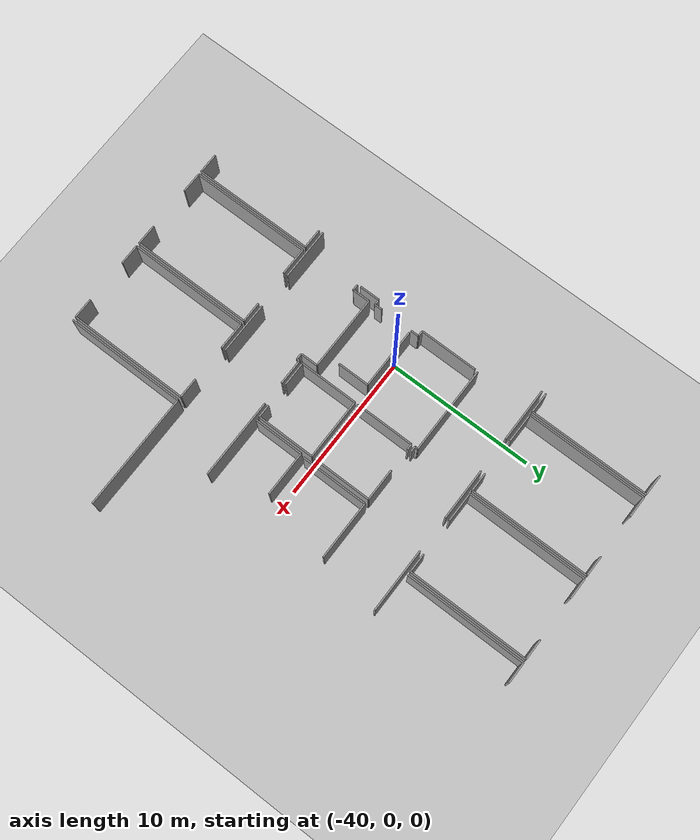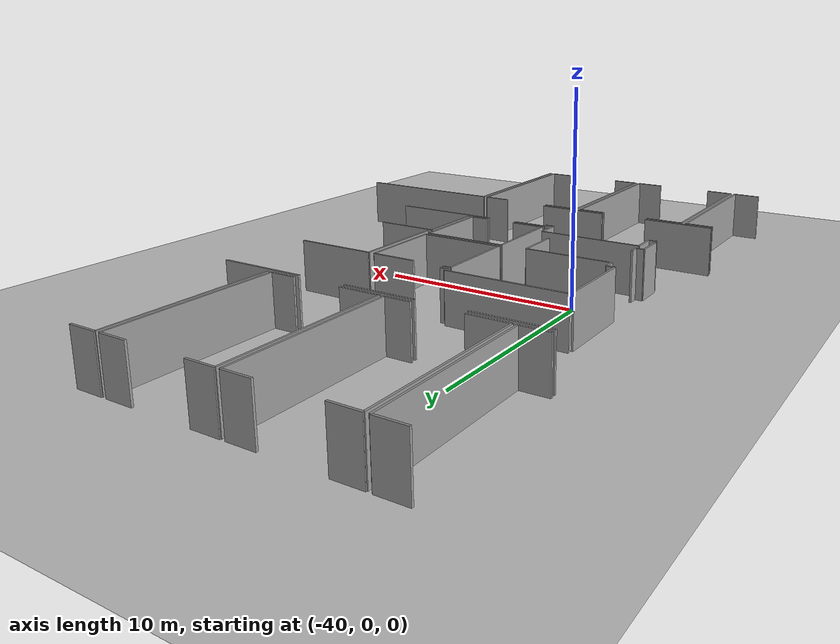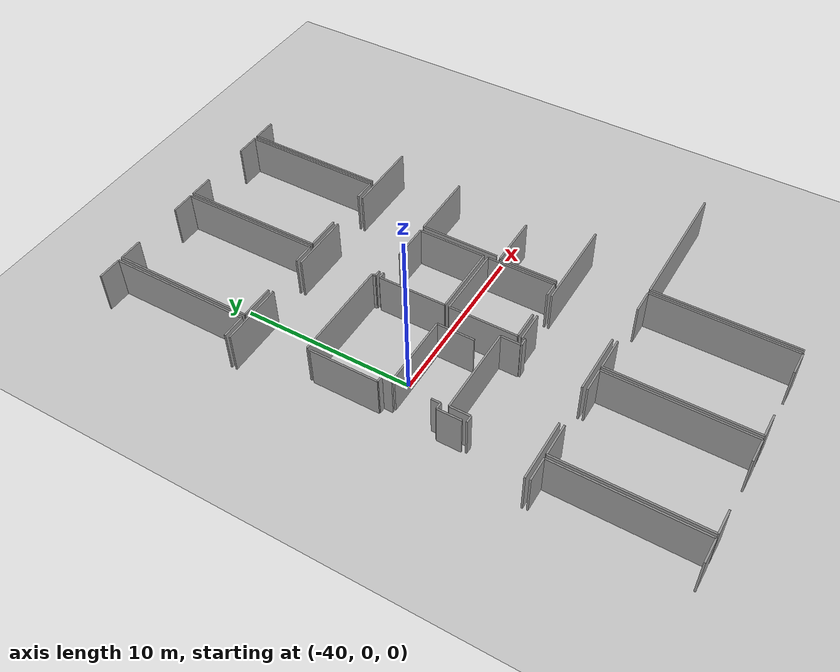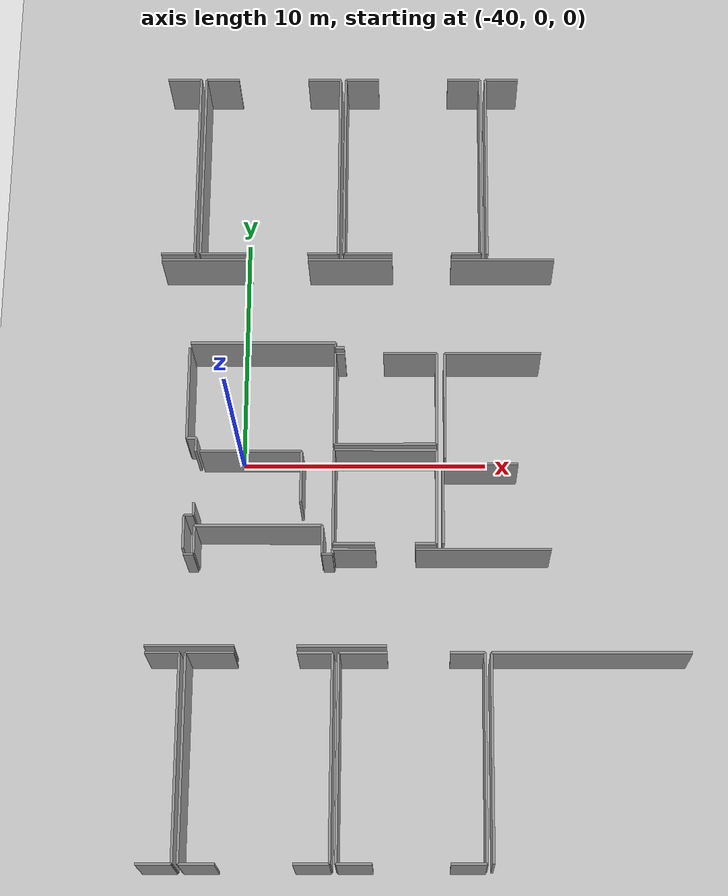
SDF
<sdf version="1.6">
 <world name="default">
  <model name="ground_plane">
   <static>1</static>
   <link name="link">
    <collision name="collision">
     <geometry><plane><normal>0 0 1</normal><size>100 100</size></plane></geometry>
     <surface><friction><ode><mu>100</mu><mu2>50</mu2></ode></friction></surface>
    </collision>
    <visual name="visual">
     <cast_shadows>0</cast_shadows>
     <geometry><plane><normal>0 0 1</normal><size>100 100</size></plane></geometry>
     <material>
      <script><uri>file://media/materials/scripts/gazebo.material</uri><name>Gazebo/Grey</name></script>
     </material>
    </visual>
   </link>
  </model>
  <model name="50041185">
   <static>1</static>
   <link name="Wall_22">
    <collision name="Wall_22_Collision">
     <geometry><box><size>1.37571651902 0.1 2.5</size></box></geometry>
     <pose>0.68785825951 0 1.25 0 0 0</pose>
    </collision>
    <visual name="Wall_22_Visual">
     <pose>0.68785825951 0 1.25 0 0 0</pose>
     <geometry><box><size>1.37571651902 0.1 2.5</size></box></geometry>
     <material>
      <script><uri>file://media/materials/scripts/gazebo.material</uri><name>Gazebo/Grey</name></script>
      <ambient>1 1 1 1</ambient>
     </material>
    </visual>
    <pose>28.1788406055 -25.3493308253 0 0 0 0.0</pose>
   </link>
   <link name="Wall_23">
    <collision name="Wall_23_Collision">
     <geometry><box><size>8.23040455522 0.1 2.5</size></box></geometry>
     <pose>4.11520227761 0 1.25 0 0 0</pose>
    </collision>
    <visual name="Wall_23_Visual">
     <pose>4.11520227761 0 1.25 0 0 0</pose>
     <geometry><box><size>8.23040455522 0.1 2.5</size></box></geometry>
     <material>
      <script><uri>file://media/materials/scripts/gazebo.material</uri><name>Gazebo/Grey</name></script>
      <ambient>1 1 1 1</ambient>
     </material>
    </visual>
    <pose>29.5545571245 -25.3493308253 0 0 0 -1.57079632679</pose>
   </link>
   <link name="Wall_24">
    <collision name="Wall_24_Collision">
     <geometry><box><size>1.38702830488 0.1 2.5</size></box></geometry>
     <pose>0.693514152442 0 1.25 0 0 0</pose>
    </collision>
    <visual name="Wall_24_Visual">
     <pose>0.693514152442 0 1.25 0 0 0</pose>
     <geometry><box><size>1.38702830488 0.1 2.5</size></box></geometry>
     <material>
      <script><uri>file://media/materials/scripts/gazebo.material</uri><name>Gazebo/Grey</name></script>
      <ambient>1 1 1 1</ambient>
     </material>
    </visual>
    <pose>29.5545571245 -33.5797353805 0 0 0 3.14159265359</pose>
   </link>
   <link name="Wall_26">
    <collision name="Wall_26_Collision">
     <geometry><box><size>8.23307362829 0.1 2.5</size></box></geometry>
     <pose>4.11653681414 0 1.25 0 0 0</pose>
    </collision>
    <visual name="Wall_26_Visual">
     <pose>4.11653681414 0 1.25 0 0 0</pose>
     <geometry><box><size>8.23307362829 0.1 2.5</size></box></geometry>
     <material>
      <script><uri>file://media/materials/scripts/gazebo.material</uri><name>Gazebo/Grey</name></script>
      <ambient>1 1 1 1</ambient>
     </material>
    </visual>
    <pose>29.7912149366 -33.5806250715 0 0 0 1.57079632679</pose>
   </link>
   <link name="Wall_27">
    <collision name="Wall_27_Collision">
     <geometry><box><size>1.90050712388 0.1 2.5</size></box></geometry>
     <pose>0.950253561942 0 1.25 0 0 0</pose>
    </collision>
    <visual name="Wall_27_Visual">
     <pose>0.950253561942 0 1.25 0 0 0</pose>
     <geometry><box><size>1.90050712388 0.1 2.5</size></box></geometry>
     <material>
      <script><uri>file://media/materials/scripts/gazebo.material</uri><name>Gazebo/Grey</name></script>
      <ambient>1 1 1 1</ambient>
     </material>
    </visual>
    <pose>29.7912149366 -25.3475514432 0 0 0 0.0</pose>
   </link>
   <link name="Wall_28">
    <collision name="Wall_28_Collision">
     <geometry><box><size>1.38664700873 0.1 2.5</size></box></geometry>
     <pose>0.693323504366 0 1.25 0 0 0</pose>
    </collision>
    <visual name="Wall_28_Visual">
     <pose>0.693323504366 0 1.25 0 0 0</pose>
     <geometry><box><size>1.38664700873 0.1 2.5</size></box></geometry>
     <material>
      <script><uri>file://media/materials/scripts/gazebo.material</uri><name>Gazebo/Grey</name></script>
      <ambient>1 1 1 1</ambient>
     </material>
    </visual>
    <pose>34.1704012507 -25.3475514432 0 0 0 0.0</pose>
   </link>
   <link name="Wall_29">
    <collision name="Wall_29_Collision">
     <geometry><box><size>8.24082665006 0.1 2.5</size></box></geometry>
     <pose>4.12041332503 0 1.25 0 0 0</pose>
    </collision>
    <visual name="Wall_29_Visual">
     <pose>4.12041332503 0 1.25 0 0 0</pose>
     <geometry><box><size>8.24082665006 0.1 2.5</size></box></geometry>
     <material>
      <script><uri>file://media/materials/scripts/gazebo.material</uri><name>Gazebo/Grey</name></script>
      <ambient>1 1 1 1</ambient>
     </material>
    </visual>
    <pose>35.5570482594 -25.3475514432 0 0 0 -1.57079632679</pose>
   </link>
   <link name="Wall_30">
    <collision name="Wall_30_Collision">
     <geometry><box><size>1.3957981164 0.1 2.5</size></box></geometry>
     <pose>0.697899058199 0 1.25 0 0 0</pose>
    </collision>
    <visual name="Wall_30_Visual">
     <pose>0.697899058199 0 1.25 0 0 0</pose>
     <geometry><box><size>1.3957981164 0.1 2.5</size></box></geometry>
     <material>
      <script><uri>file://media/materials/scripts/gazebo.material</uri><name>Gazebo/Grey</name></script>
      <ambient>1 1 1 1</ambient>
     </material>
    </visual>
    <pose>35.5570482594 -33.5883780933 0 0 0 3.14159265359</pose>
   </link>
   <link name="Wall_31">
    <collision name="Wall_31_Collision">
     <geometry><box><size>1.40268287387 0.1 2.5</size></box></geometry>
     <pose>0.701341436936 0 1.25 0 0 0</pose>
    </collision>
    <visual name="Wall_31_Visual">
     <pose>0.701341436936 0 1.25 0 0 0</pose>
     <geometry><box><size>1.40268287387 0.1 2.5</size></box></geometry>
     <material>
      <script><uri>file://media/materials/scripts/gazebo.material</uri><name>Gazebo/Grey</name></script>
      <ambient>1 1 1 1</ambient>
     </material>
    </visual>
    <pose>31.1938763838 -33.5883780933 0 0 0 3.13606534489</pose>
   </link>
   <link name="Wall_32">
    <collision name="Wall_32_Collision">
     <geometry><box><size>8.23980986032 0.1 2.5</size></box></geometry>
     <pose>4.11990493016 0 1.25 0 0 0</pose>
    </collision>
    <visual name="Wall_32_Visual">
     <pose>4.11990493016 0 1.25 0 0 0</pose>
     <geometry><box><size>8.23980986032 0.1 2.5</size></box></geometry>
     <material>
      <script><uri>file://media/materials/scripts/gazebo.material</uri><name>Gazebo/Grey</name></script>
      <ambient>1 1 1 1</ambient>
     </material>
    </visual>
    <pose>35.8050178574 -33.5869800074 0 0 0 1.57079632679</pose>
   </link>
   <link name="Wall_33">
    <collision name="Wall_33_Collision">
     <geometry><box><size>1.90775175078 0.1 2.5</size></box></geometry>
     <pose>0.953875875392 0 1.25 0 0 0</pose>
    </collision>
    <visual name="Wall_33_Visual">
     <pose>0.953875875392 0 1.25 0 0 0</pose>
     <geometry><box><size>1.90775175078 0.1 2.5</size></box></geometry>
     <material>
      <script><uri>file://media/materials/scripts/gazebo.material</uri><name>Gazebo/Grey</name></script>
      <ambient>1 1 1 1</ambient>
     </material>
    </visual>
    <pose>35.8050178574 -25.3471701471 0 0 0 0.0</pose>
   </link>
   <link name="Wall_34">
    <collision name="Wall_34_Collision">
     <geometry><box><size>1.36745510238 0.1 2.5</size></box></geometry>
     <pose>0.683727551189 0 1.25 0 0 0</pose>
    </collision>
    <visual name="Wall_34_Visual">
     <pose>0.683727551189 0 1.25 0 0 0</pose>
     <geometry><box><size>1.36745510238 0.1 2.5</size></box></geometry>
     <material>
      <script><uri>file://media/materials/scripts/gazebo.material</uri><name>Gazebo/Grey</name></script>
      <ambient>1 1 1 1</ambient>
     </material>
    </visual>
    <pose>40.1909404034 -25.3471701471 0 0 0 0.0</pose>
   </link>
   <link name="Wall_35">
    <collision name="Wall_35_Collision">
     <geometry><box><size>8.23002325907 0.1 2.5</size></box></geometry>
     <pose>4.11501162953 0 1.25 0 0 0</pose>
    </collision>
    <visual name="Wall_35_Visual">
     <pose>4.11501162953 0 1.25 0 0 0</pose>
     <geometry><box><size>8.23002325907 0.1 2.5</size></box></geometry>
     <material>
      <script><uri>file://media/materials/scripts/gazebo.material</uri><name>Gazebo/Grey</name></script>
      <ambient>1 1 1 1</ambient>
     </material>
    </visual>
    <pose>41.5583955058 -25.3471701471 0 0 0 -1.57079632679</pose>
   </link>
   <link name="Wall_36">
    <collision name="Wall_36_Collision">
     <geometry><box><size>1.38690120617 0.1 2.5</size></box></geometry>
     <pose>0.693450603083 0 1.25 0 0 0</pose>
    </collision>
    <visual name="Wall_36_Visual">
     <pose>0.693450603083 0 1.25 0 0 0</pose>
     <geometry><box><size>1.38690120617 0.1 2.5</size></box></geometry>
     <material>
      <script><uri>file://media/materials/scripts/gazebo.material</uri><name>Gazebo/Grey</name></script>
      <ambient>1 1 1 1</ambient>
     </material>
    </visual>
    <pose>41.5583955058 -33.5771934061 0 0 0 3.14159265359</pose>
   </link>
   <link name="Wall_37">
    <collision name="Wall_37_Collision">
     <geometry><box><size>1.37905581189 0.1 2.5</size></box></geometry>
     <pose>0.689527905945 0 1.25 0 0 0</pose>
    </collision>
    <visual name="Wall_37_Visual">
     <pose>0.689527905945 0 1.25 0 0 0</pose>
     <geometry><box><size>1.37905581189 0.1 2.5</size></box></geometry>
     <material>
      <script><uri>file://media/materials/scripts/gazebo.material</uri><name>Gazebo/Grey</name></script>
      <ambient>1 1 1 1</ambient>
     </material>
    </visual>
    <pose>37.184038943 -33.5771934061 0 0 0 -3.13449599853</pose>
   </link>
   <link name="Wall_38">
    <collision name="Wall_38_Collision">
     <geometry><box><size>8.23510720777 0.1 2.5</size></box></geometry>
     <pose>4.11755360388 0 1.25 0 0 0</pose>
    </collision>
    <visual name="Wall_38_Visual">
     <pose>4.11755360388 0 1.25 0 0 0</pose>
     <geometry><box><size>8.23510720777 0.1 2.5</size></box></geometry>
     <material>
      <script><uri>file://media/materials/scripts/gazebo.material</uri><name>Gazebo/Grey</name></script>
      <ambient>1 1 1 1</ambient>
     </material>
    </visual>
    <pose>41.8078902884 -33.582658651 0 0 0 1.57079632679</pose>
   </link>
   <link name="Wall_39">
    <collision name="Wall_39_Collision">
     <geometry><box><size>7.88698382033 0.1 2.5</size></box></geometry>
     <pose>3.94349191017 0 1.25 0 0 0</pose>
    </collision>
    <visual name="Wall_39_Visual">
     <pose>3.94349191017 0 1.25 0 0 0</pose>
     <geometry><box><size>7.88698382033 0.1 2.5</size></box></geometry>
     <material>
      <script><uri>file://media/materials/scripts/gazebo.material</uri><name>Gazebo/Grey</name></script>
      <ambient>1 1 1 1</ambient>
     </material>
    </visual>
    <pose>41.8078902884 -25.3475514432 0 0 0 0.0</pose>
   </link>
   <link name="Wall_131">
    <collision name="Wall_131_Collision">
     <geometry><box><size>3.95060943835 0.1 2.5</size></box></geometry>
     <pose>1.97530471918 0 1.25 0 0 0</pose>
    </collision>
    <visual name="Wall_131_Visual">
     <pose>1.97530471918 0 1.25 0 0 0</pose>
     <geometry><box><size>3.95060943835 0.1 2.5</size></box></geometry>
     <material>
      <script><uri>file://media/materials/scripts/gazebo.material</uri><name>Gazebo/Grey</name></script>
      <ambient>1 1 1 1</ambient>
     </material>
    </visual>
    <pose>29.5147752259 -12.4622834556 0 0 0 -1.57079632679</pose>
   </link>
   <link name="Wall_132">
    <collision name="Wall_132_Collision">
     <geometry><box><size>0.389811766799 0.1 2.5</size></box></geometry>
     <pose>0.1949058834 0 1.25 0 0 0</pose>
    </collision>
    <visual name="Wall_132_Visual">
     <pose>0.1949058834 0 1.25 0 0 0</pose>
     <geometry><box><size>0.389811766799 0.1 2.5</size></box></geometry>
     <material>
      <script><uri>file://media/materials/scripts/gazebo.material</uri><name>Gazebo/Grey</name></script>
      <ambient>1 1 1 1</ambient>
     </material>
    </visual>
    <pose>29.5147752259 -16.4128928939 0 0 0 0.0</pose>
   </link>
   <link name="Wall_133">
    <collision name="Wall_133_Collision">
     <geometry><box><size>0.566987379097 0.1 2.5</size></box></geometry>
     <pose>0.283493689549 0 1.25 0 0 0</pose>
    </collision>
    <visual name="Wall_133_Visual">
     <pose>0.283493689549 0 1.25 0 0 0</pose>
     <geometry><box><size>0.566987379097 0.1 2.5</size></box></geometry>
     <material>
      <script><uri>file://media/materials/scripts/gazebo.material</uri><name>Gazebo/Grey</name></script>
      <ambient>1 1 1 1</ambient>
     </material>
    </visual>
    <pose>29.9045869927 -16.4128928939 0 0 0 -1.57079632679</pose>
   </link>
   <link name="Wall_134">
    <collision name="Wall_134_Collision">
     <geometry><box><size>0.524663506145 0.1 2.5</size></box></geometry>
     <pose>0.262331753073 0 1.25 0 0 0</pose>
    </collision>
    <visual name="Wall_134_Visual">
     <pose>0.262331753073 0 1.25 0 0 0</pose>
     <geometry><box><size>0.524663506145 0.1 2.5</size></box></geometry>
     <material>
      <script><uri>file://media/materials/scripts/gazebo.material</uri><name>Gazebo/Grey</name></script>
      <ambient>1 1 1 1</ambient>
     </material>
    </visual>
    <pose>29.9045869927 -19.176908705 0 0 0 -1.57079632679</pose>
   </link>
   <link name="Wall_135">
    <collision name="Wall_135_Collision">
     <geometry><box><size>0.379643869393 0.1 2.5</size></box></geometry>
     <pose>0.189821934697 0 1.25 0 0 0</pose>
    </collision>
    <visual name="Wall_135_Visual">
     <pose>0.189821934697 0 1.25 0 0 0</pose>
     <geometry><box><size>0.379643869393 0.1 2.5</size></box></geometry>
     <material>
      <script><uri>file://media/materials/scripts/gazebo.material</uri><name>Gazebo/Grey</name></script>
      <ambient>1 1 1 1</ambient>
     </material>
    </visual>
    <pose>29.9045869927 -19.7015722111 0 0 0 3.14159265359</pose>
   </link>
   <link name="Wall_136">
    <collision name="Wall_136_Collision">
     <geometry><box><size>1.38804509462 0.1 2.5</size></box></geometry>
     <pose>0.694022547312 0 1.25 0 0 0</pose>
    </collision>
    <visual name="Wall_136_Visual">
     <pose>0.694022547312 0 1.25 0 0 0</pose>
     <geometry><box><size>1.38804509462 0.1 2.5</size></box></geometry>
     <material>
      <script><uri>file://media/materials/scripts/gazebo.material</uri><name>Gazebo/Grey</name></script>
      <ambient>1 1 1 1</ambient>
     </material>
    </visual>
    <pose>29.5249431233 -19.7015722111 0 0 0 -1.57079632679</pose>
   </link>
   <link name="Wall_137">
    <collision name="Wall_137_Collision">
     <geometry><box><size>4.13401288781 0.1 2.5</size></box></geometry>
     <pose>2.0670064439 0 1.25 0 0 0</pose>
    </collision>
    <visual name="Wall_137_Visual">
     <pose>2.0670064439 0 1.25 0 0 0</pose>
     <geometry><box><size>4.13401288781 0.1 2.5</size></box></geometry>
     <material>
      <script><uri>file://media/materials/scripts/gazebo.material</uri><name>Gazebo/Grey</name></script>
      <ambient>1 1 1 1</ambient>
     </material>
    </visual>
    <pose>30.0623165012 -16.9820409512 0 0 0 0.0</pose>
   </link>
   <link name="Wall_138">
    <collision name="Wall_138_Collision">
     <geometry><box><size>2.15675445179 0.1 2.5</size></box></geometry>
     <pose>1.07837722589 0 1.25 0 0 0</pose>
    </collision>
    <visual name="Wall_138_Visual">
     <pose>1.07837722589 0 1.25 0 0 0</pose>
     <geometry><box><size>2.15675445179 0.1 2.5</size></box></geometry>
     <material>
      <script><uri>file://media/materials/scripts/gazebo.material</uri><name>Gazebo/Grey</name></script>
      <ambient>1 1 1 1</ambient>
     </material>
    </visual>
    <pose>34.196329389 -16.9820409512 0 0 0 -1.57468575264</pose>
   </link>
   <link name="Wall_146">
    <collision name="Wall_146_Collision">
     <geometry><box><size>1.15748802095 0.1 2.5</size></box></geometry>
     <pose>0.578744010473 0 1.25 0 0 0</pose>
    </collision>
    <visual name="Wall_146_Visual">
     <pose>0.578744010473 0 1.25 0 0 0</pose>
     <geometry><box><size>1.15748802095 0.1 2.5</size></box></geometry>
     <material>
      <script><uri>file://media/materials/scripts/gazebo.material</uri><name>Gazebo/Grey</name></script>
      <ambient>1 1 1 1</ambient>
     </material>
    </visual>
    <pose>29.95936654 -21.2882726013 0 0 0 1.57079632679</pose>
   </link>
   <link name="Wall_147">
    <collision name="Wall_147_Collision">
     <geometry><box><size>5.12195121951 0.1 2.5</size></box></geometry>
     <pose>2.56097560976 0 1.25 0 0 0</pose>
    </collision>
    <visual name="Wall_147_Visual">
     <pose>2.56097560976 0 1.25 0 0 0</pose>
     <geometry><box><size>5.12195121951 0.1 2.5</size></box></geometry>
     <material>
      <script><uri>file://media/materials/scripts/gazebo.material</uri><name>Gazebo/Grey</name></script>
      <ambient>1 1 1 1</ambient>
     </material>
    </visual>
    <pose>29.95936654 -20.1307845804 0 0 0 0.0</pose>
   </link>
   <link name="Wall_148">
    <collision name="Wall_148_Collision">
     <geometry><box><size>1.14465105047 0.1 2.5</size></box></geometry>
     <pose>0.572325525235 0 1.25 0 0 0</pose>
    </collision>
    <visual name="Wall_148_Visual">
     <pose>0.572325525235 0 1.25 0 0 0</pose>
     <geometry><box><size>1.14465105047 0.1 2.5</size></box></geometry>
     <material>
      <script><uri>file://media/materials/scripts/gazebo.material</uri><name>Gazebo/Grey</name></script>
      <ambient>1 1 1 1</ambient>
     </material>
    </visual>
    <pose>35.0813177595 -20.1307845804 0 0 0 -1.57079632679</pose>
   </link>
   <link name="Wall_149">
    <collision name="Wall_149_Collision">
     <geometry><box><size>3.96484449472 0.1 2.5</size></box></geometry>
     <pose>1.98242224736 0 1.25 0 0 0</pose>
    </collision>
    <visual name="Wall_149_Visual">
     <pose>1.98242224736 0 1.25 0 0 0</pose>
     <geometry><box><size>3.96484449472 0.1 2.5</size></box></geometry>
     <material>
      <script><uri>file://media/materials/scripts/gazebo.material</uri><name>Gazebo/Grey</name></script>
      <ambient>1 1 1 1</ambient>
     </material>
    </visual>
    <pose>35.5110385236 -20.8891826281 0 0 0 1.57079632679</pose>
   </link>
   <link name="Wall_150">
    <collision name="Wall_150_Collision">
     <geometry><box><size>4.15841584158 0.1 2.5</size></box></geometry>
     <pose>2.07920792079 0 1.25 0 0 0</pose>
    </collision>
    <visual name="Wall_150_Visual">
     <pose>2.07920792079 0 1.25 0 0 0</pose>
     <geometry><box><size>4.15841584158 0.1 2.5</size></box></geometry>
     <material>
      <script><uri>file://media/materials/scripts/gazebo.material</uri><name>Gazebo/Grey</name></script>
      <ambient>1 1 1 1</ambient>
     </material>
    </visual>
    <pose>35.5110385236 -16.9243381334 0 0 0 0.0</pose>
   </link>
   <link name="Wall_151">
    <collision name="Wall_151_Collision">
     <geometry><box><size>3.95759986782 0.1 2.5</size></box></geometry>
     <pose>1.97879993391 0 1.25 0 0 0</pose>
    </collision>
    <visual name="Wall_151_Visual">
     <pose>1.97879993391 0 1.25 0 0 0</pose>
     <geometry><box><size>3.95759986782 0.1 2.5</size></box></geometry>
     <material>
      <script><uri>file://media/materials/scripts/gazebo.material</uri><name>Gazebo/Grey</name></script>
      <ambient>1 1 1 1</ambient>
     </material>
    </visual>
    <pose>39.6694543652 -16.9243381334 0 0 0 -1.57079632679</pose>
   </link>
   <link name="Wall_152">
    <collision name="Wall_152_Collision">
     <geometry><box><size>0.873676584603 0.1 2.5</size></box></geometry>
     <pose>0.436838292302 0 1.25 0 0 0</pose>
    </collision>
    <visual name="Wall_152_Visual">
     <pose>0.436838292302 0 1.25 0 0 0</pose>
     <geometry><box><size>0.873676584603 0.1 2.5</size></box></geometry>
     <material>
      <script><uri>file://media/materials/scripts/gazebo.material</uri><name>Gazebo/Grey</name></script>
      <ambient>1 1 1 1</ambient>
     </material>
    </visual>
    <pose>39.6694543652 -20.8819380012 0 0 0 3.14159265359</pose>
   </link>
   <link name="Wall_153">
    <collision name="Wall_153_Collision">
     <geometry><box><size>1.67657483593 0.1 2.5</size></box></geometry>
     <pose>0.838287417963 0 1.25 0 0 0</pose>
    </collision>
    <visual name="Wall_153_Visual">
     <pose>0.838287417963 0 1.25 0 0 0</pose>
     <geometry><box><size>1.67657483593 0.1 2.5</size></box></geometry>
     <material>
      <script><uri>file://media/materials/scripts/gazebo.material</uri><name>Gazebo/Grey</name></script>
      <ambient>1 1 1 1</ambient>
     </material>
    </visual>
    <pose>37.1875977071 -20.8819380012 0 0 0 -3.13727155244</pose>
   </link>
   <link name="Wall_154">
    <collision name="Wall_154_Collision">
     <geometry><box><size>3.36837021314 0.1 2.5</size></box></geometry>
     <pose>1.68418510657 0 1.25 0 0 0</pose>
    </collision>
    <visual name="Wall_154_Visual">
     <pose>1.68418510657 0 1.25 0 0 0</pose>
     <geometry><box><size>3.36837021314 0.1 2.5</size></box></geometry>
     <material>
      <script><uri>file://media/materials/scripts/gazebo.material</uri><name>Gazebo/Grey</name></script>
      <ambient>1 1 1 1</ambient>
     </material>
    </visual>
    <pose>39.9244143927 -20.8863864564 0 0 0 1.57079632679</pose>
   </link>
   <link name="Wall_155">
    <collision name="Wall_155_Collision">
     <geometry><box><size>3.04388718718 0.1 2.5</size></box></geometry>
     <pose>1.52194359359 0 1.25 0 0 0</pose>
    </collision>
    <visual name="Wall_155_Visual">
     <pose>1.52194359359 0 1.25 0 0 0</pose>
     <geometry><box><size>3.04388718718 0.1 2.5</size></box></geometry>
     <material>
      <script><uri>file://media/materials/scripts/gazebo.material</uri><name>Gazebo/Grey</name></script>
      <ambient>1 1 1 1</ambient>
     </material>
    </visual>
    <pose>39.9244143927 -17.5180162432 0 0 0 0.0</pose>
   </link>
   <link name="Wall_238">
    <collision name="Wall_238_Collision">
     <geometry><box><size>0.396675097548 0.1 2.5</size></box></geometry>
     <pose>0.198337548774 0 1.25 0 0 0</pose>
    </collision>
    <visual name="Wall_238_Visual">
     <pose>0.198337548774 0 1.25 0 0 0</pose>
     <geometry><box><size>0.396675097548 0.1 2.5</size></box></geometry>
     <material>
      <script><uri>file://media/materials/scripts/gazebo.material</uri><name>Gazebo/Grey</name></script>
      <ambient>1 1 1 1</ambient>
     </material>
    </visual>
    <pose>29.5555739143 -21.3242415384 0 0 0 0.0</pose>
   </link>
   <link name="Wall_239">
    <collision name="Wall_239_Collision">
     <geometry><box><size>0.42069675517 0.1 2.5</size></box></geometry>
     <pose>0.210348377585 0 1.25 0 0 0</pose>
    </collision>
    <visual name="Wall_239_Visual">
     <pose>0.210348377585 0 1.25 0 0 0</pose>
     <geometry><box><size>0.42069675517 0.1 2.5</size></box></geometry>
     <material>
      <script><uri>file://media/materials/scripts/gazebo.material</uri><name>Gazebo/Grey</name></script>
      <ambient>1 1 1 1</ambient>
     </material>
    </visual>
    <pose>35.0819532531 -21.3242415384 0 0 0 0.0</pose>
   </link>
   <link name="Wall_240">
    <collision name="Wall_240_Collision">
     <geometry><box><size>0.201832763507 0.1 2.5</size></box></geometry>
     <pose>0.100916381754 0 1.25 0 0 0</pose>
    </collision>
    <visual name="Wall_240_Visual">
     <pose>0.100916381754 0 1.25 0 0 0</pose>
     <geometry><box><size>0.201832763507 0.1 2.5</size></box></geometry>
     <material>
      <script><uri>file://media/materials/scripts/gazebo.material</uri><name>Gazebo/Grey</name></script>
      <ambient>1 1 1 1</ambient>
     </material>
    </visual>
    <pose>35.5026500083 -21.3242415384 0 0 0 1.57079632679</pose>
   </link>
   <link name="Wall_241">
    <collision name="Wall_241_Collision">
     <geometry><box><size>1.71989984621 0.1 2.5</size></box></geometry>
     <pose>0.859949923105 0 1.25 0 0 0</pose>
    </collision>
    <visual name="Wall_241_Visual">
     <pose>0.859949923105 0 1.25 0 0 0</pose>
     <geometry><box><size>1.71989984621 0.1 2.5</size></box></geometry>
     <material>
      <script><uri>file://media/materials/scripts/gazebo.material</uri><name>Gazebo/Grey</name></script>
      <ambient>1 1 1 1</ambient>
     </material>
    </visual>
    <pose>35.5026500083 -21.1224087749 0 0 0 0.0</pose>
   </link>
   <link name="Wall_242">
    <collision name="Wall_242_Collision">
     <geometry><box><size>5.42279388401 0.1 2.5</size></box></geometry>
     <pose>2.711396942 0 1.25 0 0 0</pose>
    </collision>
    <visual name="Wall_242_Visual">
     <pose>2.711396942 0 1.25 0 0 0</pose>
     <geometry><box><size>5.42279388401 0.1 2.5</size></box></geometry>
     <material>
      <script><uri>file://media/materials/scripts/gazebo.material</uri><name>Gazebo/Grey</name></script>
      <ambient>1 1 1 1</ambient>
     </material>
    </visual>
    <pose>38.8166219703 -21.1224087749 0 0 0 0.0</pose>
   </link>
   <link name="Wall_248">
    <collision name="Wall_248_Collision">
     <geometry><box><size>3.53741150752 0.1 2.5</size></box></geometry>
     <pose>1.76870575376 0 1.25 0 0 0</pose>
    </collision>
    <visual name="Wall_248_Visual">
     <pose>1.76870575376 0 1.25 0 0 0</pose>
     <geometry><box><size>3.53741150752 0.1 2.5</size></box></geometry>
     <material>
      <script><uri>file://media/materials/scripts/gazebo.material</uri><name>Gazebo/Grey</name></script>
      <ambient>1 1 1 1</ambient>
     </material>
    </visual>
    <pose>37.691671221 -25.0772124709 0 0 0 3.14159265359</pose>
   </link>
   <link name="Wall_249">
    <collision name="Wall_249_Collision">
     <geometry><box><size>3.53448823701 0.1 2.5</size></box></geometry>
     <pose>1.76724411851 0 1.25 0 0 0</pose>
    </collision>
    <visual name="Wall_249_Visual">
     <pose>1.76724411851 0 1.25 0 0 0</pose>
     <geometry><box><size>3.53448823701 0.1 2.5</size></box></geometry>
     <material>
      <script><uri>file://media/materials/scripts/gazebo.material</uri><name>Gazebo/Grey</name></script>
      <ambient>1 1 1 1</ambient>
     </material>
    </visual>
    <pose>31.6843503349 -25.0772124709 0 0 0 3.14159265359</pose>
   </link>
   <link name="Wall_276">
    <collision name="Wall_276_Collision">
     <geometry><box><size>1.40545761893 0.1 2.5</size></box></geometry>
     <pose>0.702728809466 0 1.25 0 0 0</pose>
    </collision>
    <visual name="Wall_276_Visual">
     <pose>0.702728809466 0 1.25 0 0 0</pose>
     <geometry><box><size>1.40545761893 0.1 2.5</size></box></geometry>
     <material>
      <script><uri>file://media/materials/scripts/gazebo.material</uri><name>Gazebo/Grey</name></script>
      <ambient>1 1 1 1</ambient>
     </material>
    </visual>
    <pose>28.1517685787 -0.0143621550859 0 0 0 0.0</pose>
   </link>
   <link name="Wall_277">
    <collision name="Wall_277_Collision">
     <geometry><box><size>8.20587450273 0.1 2.5</size></box></geometry>
     <pose>4.10293725136 0 1.25 0 0 0</pose>
    </collision>
    <visual name="Wall_277_Visual">
     <pose>4.10293725136 0 1.25 0 0 0</pose>
     <geometry><box><size>8.20587450273 0.1 2.5</size></box></geometry>
     <material>
      <script><uri>file://media/materials/scripts/gazebo.material</uri><name>Gazebo/Grey</name></script>
      <ambient>1 1 1 1</ambient>
     </material>
    </visual>
    <pose>29.5572261976 -0.0143621550859 0 0 0 -1.57079632679</pose>
   </link>
   <link name="Wall_278">
    <collision name="Wall_278_Collision">
     <geometry><box><size>1.39694200486 0.1 2.5</size></box></geometry>
     <pose>0.698471002428 0 1.25 0 0 0</pose>
    </collision>
    <visual name="Wall_278_Visual">
     <pose>0.698471002428 0 1.25 0 0 0</pose>
     <geometry><box><size>1.39694200486 0.1 2.5</size></box></geometry>
     <material>
      <script><uri>file://media/materials/scripts/gazebo.material</uri><name>Gazebo/Grey</name></script>
      <ambient>1 1 1 1</ambient>
     </material>
    </visual>
    <pose>29.5572261976 -8.22023665781 0 0 0 3.14159265359</pose>
   </link>
   <link name="Wall_280">
    <collision name="Wall_280_Collision">
     <geometry><box><size>8.20358672581 0.1 2.5</size></box></geometry>
     <pose>4.1017933629 0 1.25 0 0 0</pose>
    </collision>
    <visual name="Wall_280_Visual">
     <pose>4.1017933629 0 1.25 0 0 0</pose>
     <geometry><box><size>8.20358672581 0.1 2.5</size></box></geometry>
     <material>
      <script><uri>file://media/materials/scripts/gazebo.material</uri><name>Gazebo/Grey</name></script>
      <ambient>1 1 1 1</ambient>
     </material>
    </visual>
    <pose>29.7938840097 -8.22214313858 0 0 0 1.57079632679</pose>
   </link>
   <link name="Wall_281">
    <collision name="Wall_281_Collision">
     <geometry><box><size>1.4008820651 0.1 2.5</size></box></geometry>
     <pose>0.70044103255 0 1.25 0 0 0</pose>
    </collision>
    <visual name="Wall_281_Visual">
     <pose>0.70044103255 0 1.25 0 0 0</pose>
     <geometry><box><size>1.4008820651 0.1 2.5</size></box></geometry>
     <material>
      <script><uri>file://media/materials/scripts/gazebo.material</uri><name>Gazebo/Grey</name></script>
      <ambient>1 1 1 1</ambient>
     </material>
    </visual>
    <pose>29.7938840097 -0.0185564127658 0 0 0 0.0</pose>
   </link>
   <link name="Wall_282">
    <collision name="Wall_282_Collision">
     <geometry><box><size>1.39338324076 0.1 2.5</size></box></geometry>
     <pose>0.696691620382 0 1.25 0 0 0</pose>
    </collision>
    <visual name="Wall_282_Visual">
     <pose>0.696691620382 0 1.25 0 0 0</pose>
     <geometry><box><size>1.39338324076 0.1 2.5</size></box></geometry>
     <material>
      <script><uri>file://media/materials/scripts/gazebo.material</uri><name>Gazebo/Grey</name></script>
      <ambient>1 1 1 1</ambient>
     </material>
    </visual>
    <pose>34.1762477917 -0.0185564127658 0 0 0 0.0</pose>
   </link>
   <link name="Wall_283">
    <collision name="Wall_283_Collision">
     <geometry><box><size>8.20790808221 0.1 2.5</size></box></geometry>
     <pose>4.1039540411 0 1.25 0 0 0</pose>
    </collision>
    <visual name="Wall_283_Visual">
     <pose>4.1039540411 0 1.25 0 0 0</pose>
     <geometry><box><size>8.20790808221 0.1 2.5</size></box></geometry>
     <material>
      <script><uri>file://media/materials/scripts/gazebo.material</uri><name>Gazebo/Grey</name></script>
      <ambient>1 1 1 1</ambient>
     </material>
    </visual>
    <pose>35.5696310324 -0.0185564127658 0 0 0 -1.57079632679</pose>
   </link>
   <link name="Wall_284">
    <collision name="Wall_284_Collision">
     <geometry><box><size>1.28140927058 0.1 2.5</size></box></geometry>
     <pose>0.64070463529 0 1.25 0 0 0</pose>
    </collision>
    <visual name="Wall_284_Visual">
     <pose>0.64070463529 0 1.25 0 0 0</pose>
     <geometry><box><size>1.28140927058 0.1 2.5</size></box></geometry>
     <material>
      <script><uri>file://media/materials/scripts/gazebo.material</uri><name>Gazebo/Grey</name></script>
      <ambient>1 1 1 1</ambient>
     </material>
    </visual>
    <pose>35.5696310324 -8.22646449497 0 0 0 3.14159265359</pose>
   </link>
   <link name="Wall_285">
    <collision name="Wall_285_Collision">
     <geometry><box><size>2.01337542261 0.1 2.5</size></box></geometry>
     <pose>1.00668771131 0 1.25 0 0 0</pose>
    </collision>
    <visual name="Wall_285_Visual">
     <pose>1.00668771131 0 1.25 0 0 0</pose>
     <geometry><box><size>2.01337542261 0.1 2.5</size></box></geometry>
     <material>
      <script><uri>file://media/materials/scripts/gazebo.material</uri><name>Gazebo/Grey</name></script>
      <ambient>1 1 1 1</ambient>
     </material>
    </visual>
    <pose>31.8072547948 -8.22646449497 0 0 0 3.13944632774</pose>
   </link>
   <link name="Wall_286">
    <collision name="Wall_286_Collision">
     <geometry><box><size>8.20981456297 0.1 2.5</size></box></geometry>
     <pose>4.10490728149 0 1.25 0 0 0</pose>
    </collision>
    <visual name="Wall_286_Visual">
     <pose>4.10490728149 0 1.25 0 0 0</pose>
     <geometry><box><size>8.20981456297 0.1 2.5</size></box></geometry>
     <material>
      <script><uri>file://media/materials/scripts/gazebo.material</uri><name>Gazebo/Grey</name></script>
      <ambient>1 1 1 1</ambient>
     </material>
    </visual>
    <pose>35.7992984151 -8.22557480395 0 0 0 1.57079632679</pose>
   </link>
   <link name="Wall_287">
    <collision name="Wall_287_Collision">
     <geometry><box><size>1.39986527536 0.1 2.5</size></box></geometry>
     <pose>0.69993263768 0 1.25 0 0 0</pose>
    </collision>
    <visual name="Wall_287_Visual">
     <pose>0.69993263768 0 1.25 0 0 0</pose>
     <geometry><box><size>1.39986527536 0.1 2.5</size></box></geometry>
     <material>
      <script><uri>file://media/materials/scripts/gazebo.material</uri><name>Gazebo/Grey</name></script>
      <ambient>1 1 1 1</ambient>
     </material>
    </visual>
    <pose>35.7992984151 -0.0157602409792 0 0 0 0.0</pose>
   </link>
   <link name="Wall_288">
    <collision name="Wall_288_Collision">
     <geometry><box><size>1.39490842537 0.1 2.5</size></box></geometry>
     <pose>0.697454212687 0 1.25 0 0 0</pose>
    </collision>
    <visual name="Wall_288_Visual">
     <pose>0.697454212687 0 1.25 0 0 0</pose>
     <geometry><box><size>1.39490842537 0.1 2.5</size></box></geometry>
     <material>
      <script><uri>file://media/materials/scripts/gazebo.material</uri><name>Gazebo/Grey</name></script>
      <ambient>1 1 1 1</ambient>
     </material>
    </visual>
    <pose>40.1720026945 -0.0157602409792 0 0 0 0.0</pose>
   </link>
   <link name="Wall_289">
    <collision name="Wall_289_Collision">
     <geometry><box><size>8.20384092325 0.1 2.5</size></box></geometry>
     <pose>4.10192046162 0 1.25 0 0 0</pose>
    </collision>
    <visual name="Wall_289_Visual">
     <pose>4.10192046162 0 1.25 0 0 0</pose>
     <geometry><box><size>8.20384092325 0.1 2.5</size></box></geometry>
     <material>
      <script><uri>file://media/materials/scripts/gazebo.material</uri><name>Gazebo/Grey</name></script>
      <ambient>1 1 1 1</ambient>
     </material>
    </visual>
    <pose>41.5669111199 -0.0157602409792 0 0 0 -1.57079632679</pose>
   </link>
   <link name="Wall_290">
    <collision name="Wall_290_Collision">
     <geometry><box><size>1.26704711549 0.1 2.5</size></box></geometry>
     <pose>0.633523557747 0 1.25 0 0 0</pose>
    </collision>
    <visual name="Wall_290_Visual">
     <pose>0.633523557747 0 1.25 0 0 0</pose>
     <geometry><box><size>1.26704711549 0.1 2.5</size></box></geometry>
     <material>
      <script><uri>file://media/materials/scripts/gazebo.material</uri><name>Gazebo/Grey</name></script>
      <ambient>1 1 1 1</ambient>
     </material>
    </visual>
    <pose>41.5669111199 -8.21960116422 0 0 0 3.14159265359</pose>
   </link>
   <link name="Wall_291">
    <collision name="Wall_291_Collision">
     <geometry><box><size>2.02176812551 0.1 2.5</size></box></geometry>
     <pose>1.01088406275 0 1.25 0 0 0</pose>
    </collision>
    <visual name="Wall_291_Visual">
     <pose>1.01088406275 0 1.25 0 0 0</pose>
     <geometry><box><size>2.02176812551 0.1 2.5</size></box></geometry>
     <material>
      <script><uri>file://media/materials/scripts/gazebo.material</uri><name>Gazebo/Grey</name></script>
      <ambient>1 1 1 1</ambient>
     </material>
    </visual>
    <pose>37.8210577155 -8.21960116422 0 0 0 -3.13863798815</pose>
   </link>
   <link name="Wall_292">
    <collision name="Wall_292_Collision">
     <geometry><box><size>8.20994166169 0.1 2.5</size></box></geometry>
     <pose>4.10497083084 0 1.25 0 0 0</pose>
    </collision>
    <visual name="Wall_292_Visual">
     <pose>4.10497083084 0 1.25 0 0 0</pose>
     <geometry><box><size>8.20994166169 0.1 2.5</size></box></geometry>
     <material>
      <script><uri>file://media/materials/scripts/gazebo.material</uri><name>Gazebo/Grey</name></script>
      <ambient>1 1 1 1</ambient>
     </material>
    </visual>
    <pose>41.8043315243 -8.22023665781 0 0 0 1.57079632679</pose>
   </link>
   <link name="Wall_293">
    <collision name="Wall_293_Collision">
     <geometry><box><size>1.3893160818 0.1 2.5</size></box></geometry>
     <pose>0.6946580409 0 1.25 0 0 0</pose>
    </collision>
    <visual name="Wall_293_Visual">
     <pose>0.6946580409 0 1.25 0 0 0</pose>
     <geometry><box><size>1.3893160818 0.1 2.5</size></box></geometry>
     <material>
      <script><uri>file://media/materials/scripts/gazebo.material</uri><name>Gazebo/Grey</name></script>
      <ambient>1 1 1 1</ambient>
     </material>
    </visual>
    <pose>41.8043315243 -0.0102949961235 0 0 0 0.0</pose>
   </link>
   <link name="Wall_372">
    <collision name="Wall_372_Collision">
     <geometry><box><size>3.96929294983 0.1 2.5</size></box></geometry>
     <pose>1.98464647492 0 1.25 0 0 0</pose>
    </collision>
    <visual name="Wall_372_Visual">
     <pose>1.98464647492 0 1.25 0 0 0</pose>
     <geometry><box><size>3.96929294983 0.1 2.5</size></box></geometry>
     <material>
      <script><uri>file://media/materials/scripts/gazebo.material</uri><name>Gazebo/Grey</name></script>
      <ambient>1 1 1 1</ambient>
     </material>
    </visual>
    <pose>35.5092591416 -16.6829776688 0 0 0 1.57079632679</pose>
   </link>
   <link name="Wall_373">
    <collision name="Wall_373_Collision">
     <geometry><box><size>0.392226642433 0.1 2.5</size></box></geometry>
     <pose>0.196113321217 0 1.25 0 0 0</pose>
    </collision>
    <visual name="Wall_373_Visual">
     <pose>0.196113321217 0 1.25 0 0 0</pose>
     <geometry><box><size>0.392226642433 0.1 2.5</size></box></geometry>
     <material>
      <script><uri>file://media/materials/scripts/gazebo.material</uri><name>Gazebo/Grey</name></script>
      <ambient>1 1 1 1</ambient>
     </material>
    </visual>
    <pose>35.5092591416 -12.7136847189 0 0 0 0.0</pose>
   </link>
   <link name="Wall_374">
    <collision name="Wall_374_Collision">
     <geometry><box><size>2.18978380508 0.1 2.5</size></box></geometry>
     <pose>1.09489190254 0 1.25 0 0 0</pose>
    </collision>
    <visual name="Wall_374_Visual">
     <pose>1.09489190254 0 1.25 0 0 0</pose>
     <geometry><box><size>2.18978380508 0.1 2.5</size></box></geometry>
     <material>
      <script><uri>file://media/materials/scripts/gazebo.material</uri><name>Gazebo/Grey</name></script>
      <ambient>1 1 1 1</ambient>
     </material>
    </visual>
    <pose>37.486025496 -12.7136847189 0 0 0 0.0</pose>
   </link>
   <link name="Wall_375">
    <collision name="Wall_375_Collision">
     <geometry><box><size>3.95925215115 0.1 2.5</size></box></geometry>
     <pose>1.97962607557 0 1.25 0 0 0</pose>
    </collision>
    <visual name="Wall_375_Visual">
     <pose>1.97962607557 0 1.25 0 0 0</pose>
     <geometry><box><size>3.95925215115 0.1 2.5</size></box></geometry>
     <material>
      <script><uri>file://media/materials/scripts/gazebo.material</uri><name>Gazebo/Grey</name></script>
      <ambient>1 1 1 1</ambient>
     </material>
    </visual>
    <pose>39.6758093011 -12.7136847189 0 0 0 -1.57079632679</pose>
   </link>
   <link name="Wall_376">
    <collision name="Wall_376_Collision">
     <geometry><box><size>4.16656225795 0.1 2.5</size></box></geometry>
     <pose>2.08328112897 0 1.25 0 0 0</pose>
    </collision>
    <visual name="Wall_376_Visual">
     <pose>2.08328112897 0 1.25 0 0 0</pose>
     <geometry><box><size>4.16656225795 0.1 2.5</size></box></geometry>
     <material>
      <script><uri>file://media/materials/scripts/gazebo.material</uri><name>Gazebo/Grey</name></script>
      <ambient>1 1 1 1</ambient>
     </material>
    </visual>
    <pose>39.6758093011 -16.6729368701 0 0 0 -3.13918279919</pose>
   </link>
   <link name="Wall_377">
    <collision name="Wall_377_Collision">
     <geometry><box><size>4.55737871605 0.1 2.5</size></box></geometry>
     <pose>2.27868935802 0 1.25 0 0 0</pose>
    </collision>
    <visual name="Wall_377_Visual">
     <pose>2.27868935802 0 1.25 0 0 0</pose>
     <geometry><box><size>4.55737871605 0.1 2.5</size></box></geometry>
     <material>
      <script><uri>file://media/materials/scripts/gazebo.material</uri><name>Gazebo/Grey</name></script>
      <ambient>1 1 1 1</ambient>
     </material>
    </visual>
    <pose>40.0136376924 -17.2750034952 0 0 0 1.57079632679</pose>
   </link>
   <link name="Wall_378">
    <collision name="Wall_378_Collision">
     <geometry><box><size>3.95505789347 0.1 2.5</size></box></geometry>
     <pose>1.97752894673 0 1.25 0 0 0</pose>
    </collision>
    <visual name="Wall_378_Visual">
     <pose>1.97752894673 0 1.25 0 0 0</pose>
     <geometry><box><size>3.95505789347 0.1 2.5</size></box></geometry>
     <material>
      <script><uri>file://media/materials/scripts/gazebo.material</uri><name>Gazebo/Grey</name></script>
      <ambient>1 1 1 1</ambient>
     </material>
    </visual>
    <pose>40.0136376924 -12.7176247792 0 0 0 0.0</pose>
   </link>
   <link name="Wall_391">
    <collision name="Wall_391_Collision">
     <geometry><box><size>3.67150065456 0.1 2.5</size></box></geometry>
     <pose>1.83575032728 0 1.25 0 0 0</pose>
    </collision>
    <visual name="Wall_391_Visual">
     <pose>1.83575032728 0 1.25 0 0 0</pose>
     <geometry><box><size>3.67150065456 0.1 2.5</size></box></geometry>
     <material>
      <script><uri>file://media/materials/scripts/gazebo.material</uri><name>Gazebo/Grey</name></script>
      <ambient>1 1 1 1</ambient>
     </material>
    </visual>
    <pose>28.1843058504 -8.50392099544 0 0 0 0.0</pose>
   </link>
   <link name="Wall_392">
    <collision name="Wall_392_Collision">
     <geometry><box><size>3.52660811652 0.1 2.5</size></box></geometry>
     <pose>1.76330405826 0 1.25 0 0 0</pose>
    </collision>
    <visual name="Wall_392_Visual">
     <pose>1.76330405826 0 1.25 0 0 0</pose>
     <geometry><box><size>3.52660811652 0.1 2.5</size></box></geometry>
     <material>
      <script><uri>file://media/materials/scripts/gazebo.material</uri><name>Gazebo/Grey</name></script>
      <ambient>1 1 1 1</ambient>
     </material>
    </visual>
    <pose>34.3081762605 -8.50392099544 0 0 0 0.0</pose>
   </link>
   <link name="Wall_393">
    <collision name="Wall_393_Collision">
     <geometry><box><size>4.31830602829 0.1 2.5</size></box></geometry>
     <pose>2.15915301415 0 1.25 0 0 0</pose>
    </collision>
    <visual name="Wall_393_Visual">
     <pose>2.15915301415 0 1.25 0 0 0</pose>
     <geometry><box><size>4.31830602829 0.1 2.5</size></box></geometry>
     <material>
      <script><uri>file://media/materials/scripts/gazebo.material</uri><name>Gazebo/Grey</name></script>
      <ambient>1 1 1 1</ambient>
     </material>
    </visual>
    <pose>40.2795282096 -8.50392099544 0 0 0 0.0</pose>
   </link>
   <link name="Wall_399">
    <collision name="Wall_399_Collision">
     <geometry><box><size>0.370619860446 0.1 2.5</size></box></geometry>
     <pose>0.185309930223 0 1.25 0 0 0</pose>
    </collision>
    <visual name="Wall_399_Visual">
     <pose>0.185309930223 0 1.25 0 0 0</pose>
     <geometry><box><size>0.370619860446 0.1 2.5</size></box></geometry>
     <material>
      <script><uri>file://media/materials/scripts/gazebo.material</uri><name>Gazebo/Grey</name></script>
      <ambient>1 1 1 1</ambient>
     </material>
    </visual>
    <pose>35.8769557315 -12.4624105543 0 0 0 3.14159265359</pose>
   </link>
   <link name="Wall_400">
    <collision name="Wall_400_Collision">
     <geometry><box><size>0.208441896821 0.1 2.5</size></box></geometry>
     <pose>0.104220948411 0 1.25 0 0 0</pose>
    </collision>
    <visual name="Wall_400_Visual">
     <pose>0.104220948411 0 1.25 0 0 0</pose>
     <geometry><box><size>0.208441896821 0.1 2.5</size></box></geometry>
     <material>
      <script><uri>file://media/materials/scripts/gazebo.material</uri><name>Gazebo/Grey</name></script>
      <ambient>1 1 1 1</ambient>
     </material>
    </visual>
    <pose>35.5063358711 -12.4624105543 0 0 0 1.57079632679</pose>
   </link>
   <link name="Wall_401">
    <collision name="Wall_401_Collision">
     <geometry><box><size>5.96194664396 0.1 2.5</size></box></geometry>
     <pose>2.98097332198 0 1.25 0 0 0</pose>
    </collision>
    <visual name="Wall_401_Visual">
     <pose>2.98097332198 0 1.25 0 0 0</pose>
     <geometry><box><size>5.96194664396 0.1 2.5</size></box></geometry>
     <material>
      <script><uri>file://media/materials/scripts/gazebo.material</uri><name>Gazebo/Grey</name></script>
      <ambient>1 1 1 1</ambient>
     </material>
    </visual>
    <pose>35.5063358711 -12.2539686575 0 0 0 3.14159265359</pose>
   </link>
   <pose>-71.7 16.7921910548 0 0 0 0</pose>
  </model>
 </world>
</sdf>
